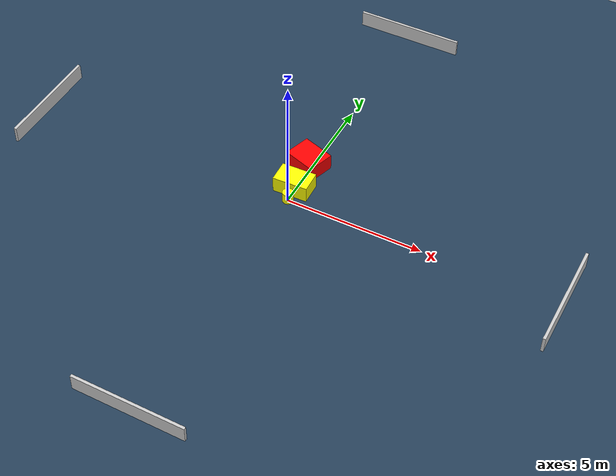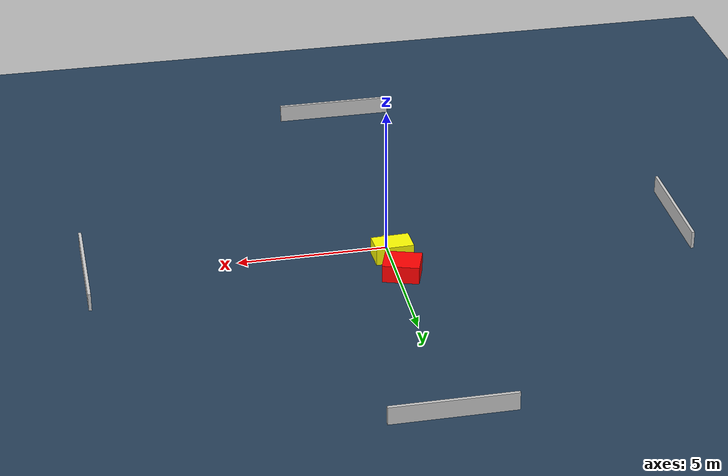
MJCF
<?xml version="1.0" ?>
<mujoco model="generated_environment">
  <option timestep="0.01" integrator="RK4" cone="elliptic"/>
  <default>
    <geom density="1"/>
  </default>
  <asset>
    <texture builtin="gradient" height="3072" name="skybox" rgb1="0.3 0.5 0.7" rgb2="0 0 0" type="skybox" width="512"/>
    <texture builtin="checker" height="300" name="groundplane" rgb1="0.2 0.3 0.4" rgb2="0.1 0.2 0.3" type="2d" width="300"/>
    <material name="groundplane" reflectance="0.2" texrepeat="5 5" texture="groundplane"/>
  </asset>
  <worldbody>
    <light dir="0 0 -1" directional="true" pos="0 0 1.5"/>
    <geom condim="3" friction="0.5 0.005 0.001" material="groundplane" name="floor" pos="0 0 0" size="0 0 0.05" type="plane"/>
    <body name="walls">
      <geom name="wall_1" condim="4" pos="-10.0 0.0 0.3" rgba="0.800000011920929 0.800000011920929 0.800000011920929 1.0" size="0.05 2.0 0.3" type="box"/>
      <geom name="wall_2" condim="4" pos="10.0 0.0 0.3" rgba="0.800000011920929 0.800000011920929 0.800000011920929 1.0" size="0.05 2.0 0.3" type="box"/>
      <geom name="wall_3" condim="4" pos="0.0 -10.0 0.3" rgba="0.800000011920929 0.800000011920929 0.800000011920929 1.0" size="2.0 0.05 0.3" type="box"/>
      <geom name="wall_4" condim="4" pos="0.0 10.0 0.3" rgba="0.800000011920929 0.800000011920929 0.800000011920929 1.0" size="2.0 0.05 0.3" type="box"/>
    </body>
    <body name="robot">
      <joint name="joint_x" type="slide" pos="0 0 0" axis="1 0 0"/>
      <joint name="joint_y" type="slide" pos="0 0 0" axis="0 1 0"/>
      <geom name="robot" type="cylinder" pos="0.0 0.0 0.2" size="0.2 0.2 0.0" mass="5.0" friction="1.0 0.005 0.0001" condim="4" rgba="1.0 1.0 0.0 1.0"/>
    </body>
    <body name="obstacle_1_movable">
      <geom name="obstacle_1_movable" condim="4" pos="-0.07120081456166873 0.6137107383024522 0.3" euler="0 0 2.442804647889929" friction="0.0 0.005 0.001" rgba="1.0 1.0 0.0 1.0" size="0.6356862982939575 0.4045398540650495 0.3" type="box" mass="0.1"/>
      <joint type="free"/>
    </body>
    <body name="obstacle_2_static">
      <geom name="obstacle_2_static" condim="4" pos="-0.15163476608270116 1.830676947058805 0.3" euler="0 0 162.03478835331444" friction="0.0 0.005 0.001" rgba="1.0 0.0 0.0 1.0" size="0.6095517385053852 0.49893832314149844 0.3" type="box"/>
    </body>
  </worldbody>
  <actuator>
    <motor name="actuator_x" joint="joint_x" gear="1" ctrlrange="-1 1"/>
    <motor name="actuator_y" joint="joint_y" gear="1" ctrlrange="-1 1"/>
  </actuator>
</mujoco>
